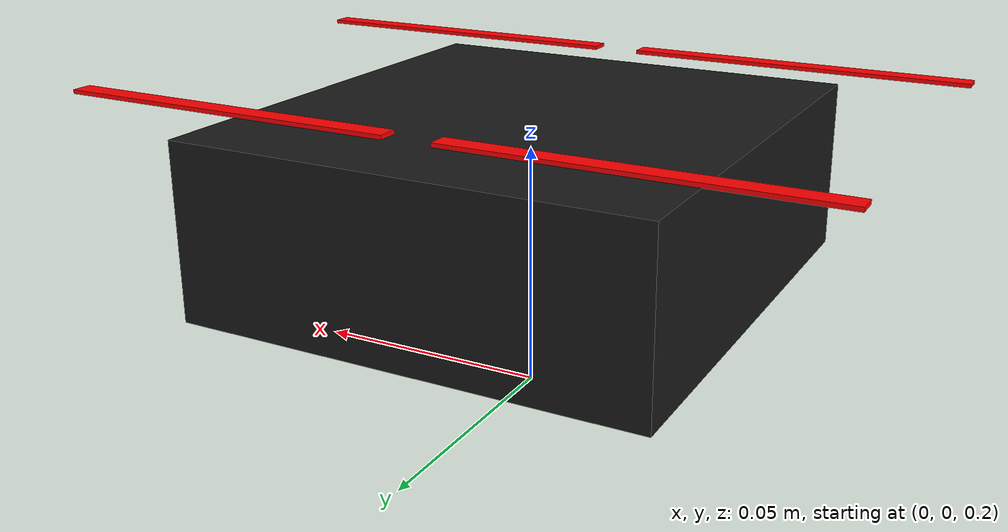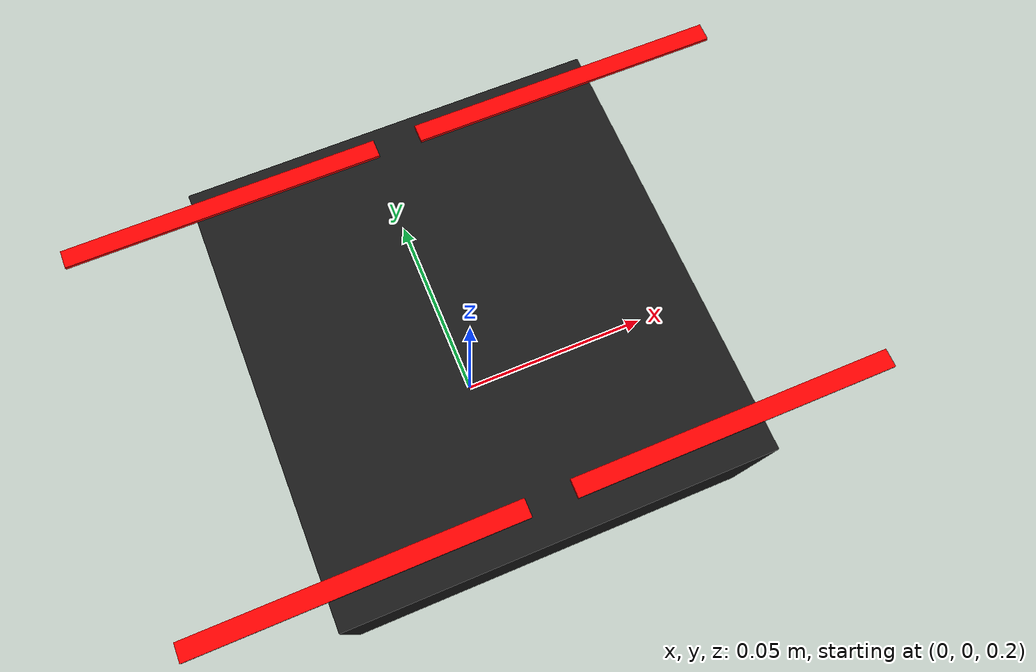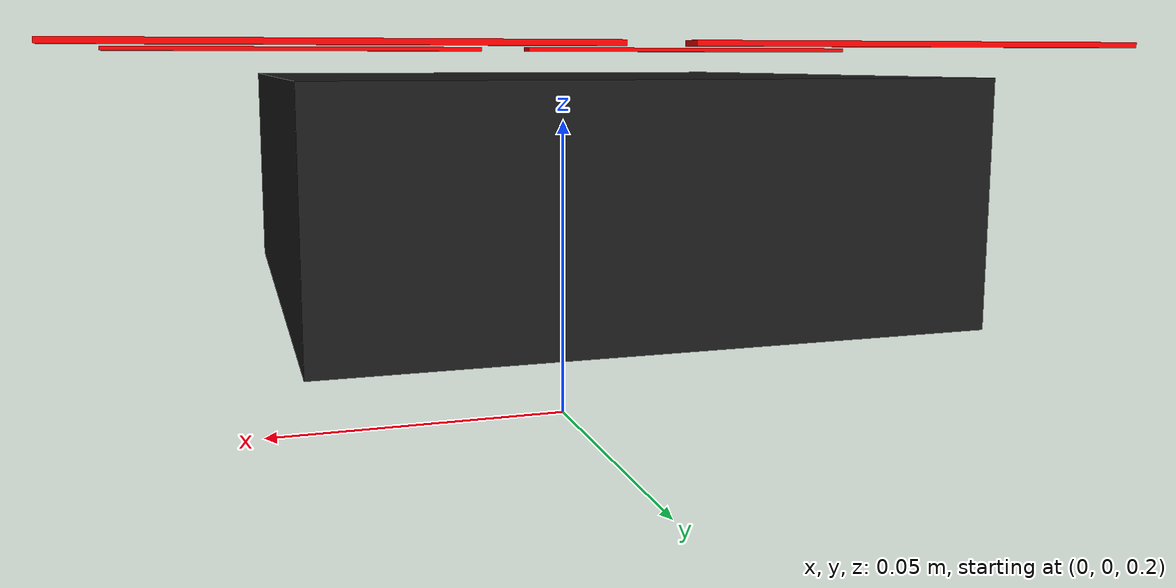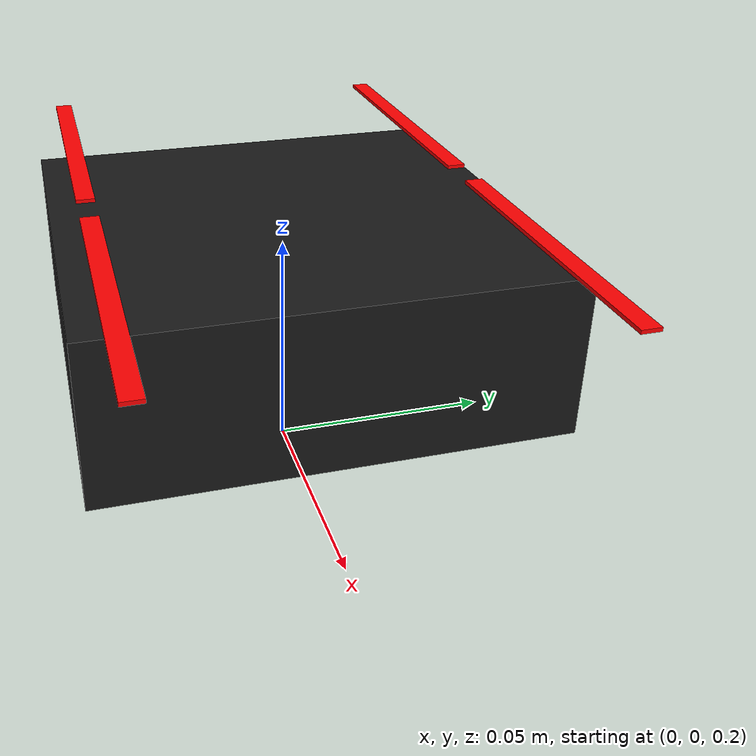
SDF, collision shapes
<?xml version="1.0" encoding="UTF-8"?>
<sdf version='1.9'>
	<model name='tello_revenant'>
		<pose>0 0 0.24 0 0 0</pose>
		<self_collide>false</self_collide>
		<static>false</static>
		<link name='base_link'>
			<pose>0 0 0 0 0 0</pose>
			<inertial>
				<mass>0.28</mass>
				<inertia>
					<ixx>0.000165</ixx>
					<ixy>0.0</ixy>
					<ixz>0.0</ixz>
					<iyy>0.000151</iyy>
					<iyz>0.0</iyz>
					<izz>0.000278</izz>
				</inertia>
			</inertial>
			<gravity>true</gravity>
			<velocity_decay/>
			<visual name='base_link_visual'>
				<pose>0 0 0 0 0 0</pose>
				<geometry>
					<mesh>
						<scale>0.0119 0.012 0.012</scale>
						<uri>meshes/main.stl</uri>
					</mesh>
				</geometry>
				<material>
					<ambient>0.1 0.1 0.1 1</ambient>
					<diffuse>0.1 0.1 0.1 1</diffuse>
				</material>
			</visual>
			<collision name='base_link_collision'>
				<pose>0 0 0 0 0 0</pose>
				<geometry>
					<box>
						<size>0.09378 0.09885 0.03523</size>
					</box>
				</geometry>
			</collision>
			<sensor name="air_pressure_sensor" type="air_pressure">
				<gz_frame_id>base_link</gz_frame_id>
				<always_on>1</always_on>
				<update_rate>50</update_rate>
				<air_pressure>
					<!-- Noise modeled after BMP390 -->
					<pressure>
						<noise type="gaussian">
							<mean>0</mean>
							<stddev>3</stddev>
						</noise>
					</pressure>
				</air_pressure>
			</sensor>
			<sensor name="magnetometer_sensor" type="magnetometer">
				<gz_frame_id>base_link</gz_frame_id>
				<always_on>1</always_on>
				<update_rate>100</update_rate>
				<magnetometer>
					<!-- TODO: update to fix units and coordinate system when we move past Harmonic -->
					<!-- See https://github.com/gazebosim/gz-sim/pull/2460 -->
					<!-- 3mgauss RMS: NOTE: noise is in tesla but sensor reports data in gauss -->
					<!-- Noise modeled after IIS2MDC -->
					<x>
						<noise type="gaussian">
							<stddev>0.0001</stddev>
					</noise>
					</x>
					<y>
						<noise type="gaussian">
							<stddev>0.0001</stddev>
						</noise>
					</y>
					<z>
						<noise type="gaussian">
							<stddev>0.0001</stddev>
						</noise>
					</z>
				</magnetometer>
			</sensor>
			<sensor name="imu_sensor" type="imu">
				<gz_frame_id>base_link</gz_frame_id>
				<always_on>1</always_on>
				<update_rate>250</update_rate>
				<imu>
					<angular_velocity>
						<!-- Noise modeled after IIM42653 -->
						<!-- 0.05 deg/s converted to rad/s -->
						<x>
							<noise type="gaussian">
								<mean>0.0</mean>
								<stddev>0.0008726646</stddev>
							</noise>
						</x>
						<y>
							<noise type="gaussian">
								<mean>0.0</mean>
								<stddev>0.0008726646</stddev>
							</noise>
						</y>
						<z>
							<noise type="gaussian">
								<mean>0.0</mean>
								<stddev>0.0008726646</stddev>
							</noise>
						</z>
					</angular_velocity>
					<linear_acceleration>
						<!-- Noise modeled after IIM42653 -->
						<!-- X & Y axis: 0.65 mg-rms converted to m/ss -->
						<x>
							<noise type="gaussian">
								<mean>0.0</mean>
								<stddev>0.00637</stddev>
							</noise>
						</x>
						<y>
							<noise type="gaussian">
								<mean>0.0</mean>
								<stddev>0.00637</stddev>
							</noise>
						</y>
						<!-- Z axis: 0.70 mg-rms converted to m/ss-->
						<z>
							<noise type="gaussian">
								<mean>0.0</mean>
								<stddev>0.00686</stddev>
							</noise>
						</z>
					</linear_acceleration>
				</imu>
			</sensor>
			<sensor name="navsat_sensor" type="navsat">
				<gz_frame_id>base_link</gz_frame_id>
				<always_on>1</always_on>
				<update_rate>30</update_rate>
			</sensor>

		</link>
		<link name='rotor_0'>
			<gravity>true</gravity>
			<self_collide>false</self_collide>
			<velocity_decay/>
			<pose>0.03972 -0.04164 0.02223 0 0 0</pose>
			<inertial>
				<mass>0.0005</mass>
				<inertia>
					<ixx>6.94e-10</ixx>
					<iyy>6.67e-08</iyy>
					<izz>6.73e-08</izz>
				</inertia>
			</inertial>
			<visual name='rotor_0_visual'>
				<pose>-0.0057 -0.038 -0.004 0 0 0</pose>
				<geometry>
					<mesh>
						<scale>0.22 0.22 0.22</scale>
						<uri>meshes/3044_prop_ccw.stl</uri>
					</mesh>
				</geometry>
				<material>
					<ambient>1 0 0 1</ambient>
					<diffuse>1 0 0 1</diffuse>
					<specular>0.1 0.1 0.1 1</specular>
				</material>
			</visual>
			<collision name='rotor_0_collision'>
				<pose>0 0 0 0 0 0</pose>
				<geometry>
					<box>
						<size>0.07 0.004 0.0008</size>
					</box>
				</geometry>
				<surface>
					<contact>
						<ode>
							<min_depth>0.001</min_depth>
							<max_vel>0</max_vel>
						</ode>
					</contact>
					<friction>
						<ode/>
					</friction>
				</surface>
			</collision>
		</link>
		<joint name='rotor_0_joint' type='revolute'>
			<parent>base_link</parent>
			<child>rotor_0</child>
			<axis>
				<xyz>0 0 1</xyz>
				<limit>
					<lower>-1e16</lower>
					<upper>1e16</upper>
				</limit>
				<dynamics>
					<spring_reference>0</spring_reference>
					<spring_stiffness>0</spring_stiffness>
				</dynamics>
			</axis>
		</joint>
		<link name='rotor_1'>
			<gravity>true</gravity>
			<self_collide>false</self_collide>
			<velocity_decay/>
			<pose>-0.03992 0.04224 0.02223 0 0 0</pose>
			<inertial>
				<mass>0.0005</mass>
				<inertia>
					<ixx>6.94e-10</ixx>
					<iyy>6.67e-08</iyy>
					<izz>6.73e-08</izz>
				</inertia>
			</inertial>
			<visual name='rotor_1_visual'>
				<pose>-0.0060 -0.03805 -0.004 0 0 0</pose>
				<geometry>
					<mesh>
						<scale>0.22 0.22 0.22</scale>
						<uri>meshes/3044_prop_ccw.stl</uri>
					</mesh>
				</geometry>
				<material>
					<ambient>1 0 0 1</ambient>
					<diffuse>1 0 0 1</diffuse>
					<specular>0.1 0.1 0.1 1</specular>
				</material>
			</visual>
			<collision name='rotor_1_collision'>
				<pose>0 0 0 0 0 0</pose>
				<geometry>
					<box>
						<size>0.07 0.004 0.0008</size>
					</box>
				</geometry>
				<surface>
					<contact>
						<ode>
							<min_depth>0.001</min_depth>
							<max_vel>0</max_vel>
						</ode>
					</contact>
					<friction>
						<ode/>
					</friction>
				</surface>
			</collision>
		</link>
		<joint name='rotor_1_joint' type='revolute'>
			<parent>base_link</parent>
			<child>rotor_1</child>
			<axis>
				<xyz>0 0 1</xyz>
				<limit>
					<lower>-1e16</lower>
					<upper>1e16</upper>
				</limit>
				<dynamics>
					<spring_reference>0</spring_reference>
					<spring_stiffness>0</spring_stiffness>
				</dynamics>
			</axis>
		</joint>
		<link name='rotor_2'>
			<gravity>true</gravity>
			<self_collide>false</self_collide>
			<velocity_decay/>
			<pose>0.03972 0.04224 0.02223 0 0 0</pose>
			<inertial>
				<mass>0.0005</mass>
				<inertia>
					<ixx>6.94e-10</ixx>
					<iyy>6.67e-08</iyy>
					<izz>6.73e-08</izz>
				</inertia>
			</inertial>
			<visual name='rotor_2_visual'>
				<pose>-0.0057 -0.038 -0.004 0 0 0</pose>
				<geometry>
					<mesh>
						<scale>0.22 0.22 0.22</scale>
						<uri>meshes/3044_prop_cw.stl</uri>
					</mesh>
				</geometry>
				<material>
					<ambient>1 0 0 1</ambient>
					<diffuse>1 0 0 1</diffuse>
					<specular>0.1 0.1 0.1 1</specular>
				</material>
			</visual>
			<collision name='rotor_2_collision'>
				<pose>0 0 0 0 0 0</pose>
				<geometry>
					<box>
						<size>0.07 0.004 0.0008</size>
					</box>
				</geometry>
				<surface>
					<contact>
						<ode>
							<min_depth>0.001</min_depth>
							<max_vel>0</max_vel>
						</ode>
					</contact>
					<friction>
						<ode/>
					</friction>
				</surface>
			</collision>
		</link>
		<joint name='rotor_2_joint' type='revolute'>
			<parent>base_link</parent>
			<child>rotor_2</child>
			<axis>
				<xyz>0 0 1</xyz>
				<limit>
					<lower>-1e16</lower>
					<upper>1e16</upper>
				</limit>
				<dynamics>
					<spring_reference>0</spring_reference>
					<spring_stiffness>0</spring_stiffness>
				</dynamics>
			</axis>
		</joint>
		<link name='rotor_3'>
			<gravity>true</gravity>
			<self_collide>false</self_collide>
			<velocity_decay/>
			<pose>-0.03992 -0.04164 0.02223 0 0 0</pose>
			<inertial>
				<mass>0.0005</mass>
				<inertia>
					<ixx>6.94e-10</ixx>
					<iyy>6.67e-08</iyy>
					<izz>6.73e-08</izz>
				</inertia>
			</inertial>
			<visual name='rotor_3_visual'>
				<pose>-0.0060 -0.038 -0.004 0 0 0</pose>
				<geometry>
					<mesh>
						<scale>0.22 0.22 0.22</scale>
						<uri>meshes/3044_prop_cw.stl</uri>
					</mesh>
				</geometry>
				<material>
					<ambient>1 0 0 1</ambient>
					<diffuse>1 0 0 1</diffuse>
					<specular>0.1 0.1 0.1 1</specular>
				</material>
			</visual>
			<collision name='rotor_3_collision'>
				<pose>0 0 0 0 0 0</pose>
				<geometry>
					<box>
						<size>0.07 0.004 0.0008</size>
					</box>
				</geometry>
				<surface>
					<contact>
						<ode>
							<min_depth>0.001</min_depth>
							<max_vel>0</max_vel>
						</ode>
					</contact>
					<friction>
						<ode/>
					</friction>
				</surface>
			</collision>
		</link>
		<joint name='rotor_3_joint' type='revolute'>
			<parent>base_link</parent>
			<child>rotor_3</child>
			<axis>
				<xyz>0 0 1</xyz>
				<limit>
					<lower>-1e16</lower>
					<upper>1e16</upper>
				</limit>
				<dynamics>
					<spring_reference>0</spring_reference>
					<spring_stiffness>0</spring_stiffness>
				</dynamics>
			</axis>
		</joint>
		<plugin
        filename="ignition-gazebo-multicopter-motor-model-system"
        name="gz::sim::systems::MulticopterMotorModel">
        <rotor>
            <robotNamespace>tello_revenant</robotNamespace>
            <jointName>rotor_0_joint</jointName>
            <linkName>rotor_0</linkName>
            <turningDirection>ccw</turningDirection>
            <timeConstantUp>0.0125</timeConstantUp>
            <timeConstantDown>0.025</timeConstantDown>
            <maxRotVelocity>800.0</maxRotVelocity>
            <motorConstant>8.54858e-06</motorConstant>
            <momentConstant>0.016</momentConstant>
            <commandSubTopic>gazebo/command/motor_speed</commandSubTopic>
            <actuator_number>0</actuator_number>
            <rotorDragCoefficient>8.06428e-05</rotorDragCoefficient>
            <rollingMomentCoefficient>1e-06</rollingMomentCoefficient>
            <motorSpeedPubTopic>motor_speed/0</motorSpeedPubTopic>
            <rotorVelocitySlowdownSim>10</rotorVelocitySlowdownSim>
            <motorType>velocity</motorType>
        </rotor>
        <rotor>
            <robotNamespace>tello_revenant</robotNamespace>
            <jointName>rotor_1_joint</jointName>
            <linkName>rotor_1</linkName>
            <turningDirection>ccw</turningDirection>
            <timeConstantUp>0.0125</timeConstantUp>
            <timeConstantDown>0.025</timeConstantDown>
            <maxRotVelocity>800.0</maxRotVelocity>
            <motorConstant>8.54858e-06</motorConstant>
            <momentConstant>0.016</momentConstant>
            <commandSubTopic>gazebo/command/motor_speed</commandSubTopic>
            <actuator_number>1</actuator_number>
            <rotorDragCoefficient>8.06428e-05</rotorDragCoefficient>
            <rollingMomentCoefficient>1e-06</rollingMomentCoefficient>
            <motorSpeedPubTopic>motor_speed/1</motorSpeedPubTopic>
            <rotorVelocitySlowdownSim>10</rotorVelocitySlowdownSim>
            <motorType>velocity</motorType>
        </rotor>
        <rotor>
            <robotNamespace>tello_revenant</robotNamespace>
            <jointName>rotor_2_joint</jointName>
            <linkName>rotor_2</linkName>
            <turningDirection>cw</turningDirection>
            <timeConstantUp>0.0125</timeConstantUp>
            <timeConstantDown>0.025</timeConstantDown>
            <maxRotVelocity>800.0</maxRotVelocity>
            <motorConstant>8.54858e-06</motorConstant>
            <momentConstant>0.016</momentConstant>
            <commandSubTopic>gazebo/command/motor_speed</commandSubTopic>
            <actuator_number>2</actuator_number>
            <rotorDragCoefficient>8.06428e-05</rotorDragCoefficient>
            <rollingMomentCoefficient>1e-06</rollingMomentCoefficient>
            <motorSpeedPubTopic>motor_speed/2</motorSpeedPubTopic>
            <rotorVelocitySlowdownSim>10</rotorVelocitySlowdownSim>
            <motorType>velocity</motorType>
        </rotor>
        <rotor>
            <robotNamespace>tello_revenant</robotNamespace>
            <jointName>rotor_3_joint</jointName>
            <linkName>rotor_3</linkName>
            <turningDirection>cw</turningDirection>
            <timeConstantUp>0.0125</timeConstantUp>
            <timeConstantDown>0.025</timeConstantDown>
            <maxRotVelocity>800.0</maxRotVelocity>
            <motorConstant>8.54858e-06</motorConstant>
            <momentConstant>0.016</momentConstant>
            <commandSubTopic>gazebo/command/motor_speed</commandSubTopic>
            <actuator_number>3</actuator_number>
            <rotorDragCoefficient>8.06428e-05</rotorDragCoefficient>
            <rollingMomentCoefficient>1e-06</rollingMomentCoefficient>
            <motorSpeedPubTopic>motor_speed/3</motorSpeedPubTopic>
            <rotorVelocitySlowdownSim>10</rotorVelocitySlowdownSim>
            <motorType>velocity</motorType>
        </rotor>
    </plugin>

    <plugin
        filename="gz-sim-multicopter-control-system"
        name="gz::sim::systems::MulticopterVelocityControl">
        <robotNamespace>tello_revenant</robotNamespace>
        <commandSubTopic>cmd_vel</commandSubTopic>
        <enableSubTopic>enable</enableSubTopic>
        <comLinkName>base_link</comLinkName>
        <velocityGain>2.7 2.7 2.7</velocityGain>
        <attitudeGain>2 3 0.15</attitudeGain>
        <angularRateGain>0.4 0.52 0.18</angularRateGain>
        <maximumLinearAcceleration>2 2 2</maximumLinearAcceleration>
        <rotorConfiguration>
            <rotor>
                <jointName>rotor_0_joint</jointName>
                <forceConstant>8.54858e-06</forceConstant>
                <momentConstant>0.016</momentConstant>
                <direction>1</direction>
            </rotor>
            <rotor>
                <jointName>rotor_1_joint</jointName>
                <forceConstant>8.54858e-06</forceConstant>
                <momentConstant>0.016</momentConstant>
                <direction>1</direction>
            </rotor>
            <rotor>
                <jointName>rotor_2_joint</jointName>
                <forceConstant>8.54858e-06</forceConstant>
                <momentConstant>0.016</momentConstant>
                <direction>-1</direction>
            </rotor>
            <rotor>
                <jointName>rotor_3_joint</jointName>
                <forceConstant>8.54858e-06</forceConstant>
                <momentConstant>0.016</momentConstant>
                <direction>-1</direction>
            </rotor>
        </rotorConfiguration>
    </plugin>
	</model>
</sdf>
